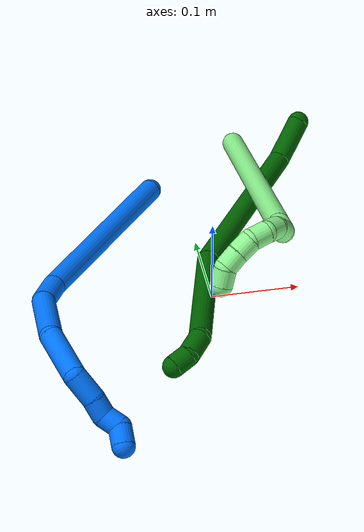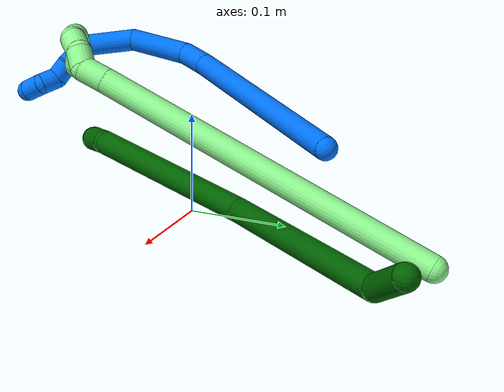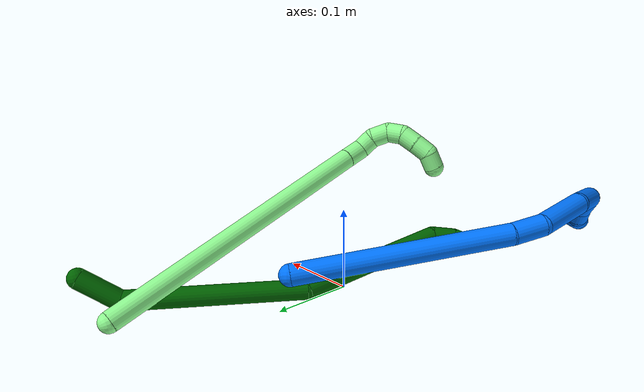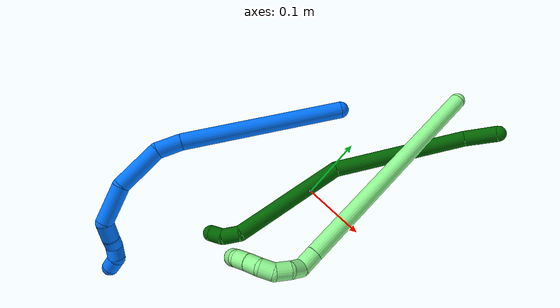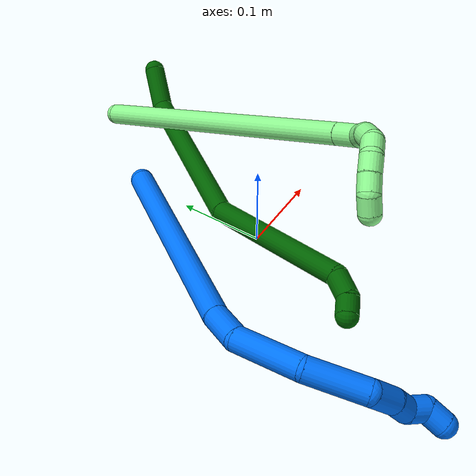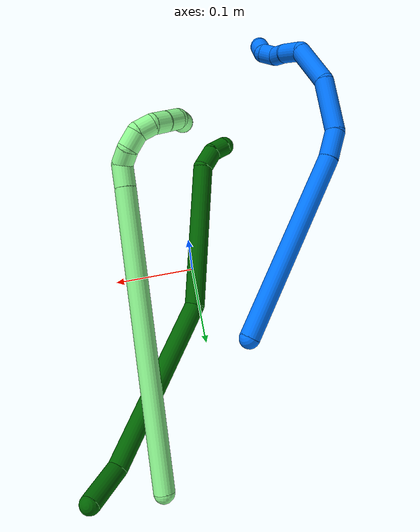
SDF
<sdf version="1.7">
 <world name="default">
  <model name="6">
   <static>0</static>
   <link name="6">
    <collision name="collision-cylinder-e_1_1_4">
     <pose>-0.000303 -0.018211 0.019753 0.744797 -0.01126 -0.004399</pose>
     <geometry><cylinder><radius>0.0125</radius><length>0.053736</length></cylinder></geometry>
     <surface>
      <friction><ode><mu>1.16</mu><mu2>1.16</mu2><slip1>0</slip1><slip2>0</slip2></ode></friction>
      <contact><ode><kp>1e+06</kp><kd>1</kd><max_vel>0</max_vel><min_depth>0.001</min_depth></ode></contact>
     </surface>
    </collision>
    <visual name="visual-cylinder-e_1_1_4">
     <pose>-0.000303 -0.018211 0.019753 0.744797 -0.01126 -0.004399</pose>
     <geometry><cylinder><radius>0.0125</radius><length>0.053736</length></cylinder></geometry>
     <material><ambient>0 0.392157 0.003922 1</ambient></material>
    </visual>
    <collision name="collision-cylinder-e_2_4_5">
     <pose>-0.009598 -0.139606 0.067545 1.30547 -0.083906 -0.064164</pose>
     <geometry><cylinder><radius>0.0125</radius><length>0.214608</length></cylinder></geometry>
     <surface>
      <friction><ode><mu>1.16</mu><mu2>1.16</mu2><slip1>0</slip1><slip2>0</slip2></ode></friction>
      <contact><ode><kp>1e+06</kp><kd>1</kd><max_vel>0</max_vel><min_depth>0.001</min_depth></ode></contact>
     </surface>
    </collision>
    <visual name="visual-cylinder-e_2_4_5">
     <pose>-0.009598 -0.139606 0.067545 1.30547 -0.083906 -0.064164</pose>
     <geometry><cylinder><radius>0.0125</radius><length>0.214608</length></cylinder></geometry>
     <material><ambient>0 0.392157 0.003922 1</ambient></material>
    </visual>
    <collision name="collision-cylinder-e_3_5_6">
     <pose>-0.0556 -0.326235 0.097615 1.54646 -0.41734 -0.407585</pose>
     <geometry><cylinder><radius>0.0125</radius><length>0.182613</length></cylinder></geometry>
     <surface>
      <friction><ode><mu>1.16</mu><mu2>1.16</mu2><slip1>0</slip1><slip2>0</slip2></ode></friction>
      <contact><ode><kp>1e+06</kp><kd>1</kd><max_vel>0</max_vel><min_depth>0.001</min_depth></ode></contact>
     </surface>
    </collision>
    <visual name="visual-cylinder-e_3_5_6">
     <pose>-0.0556 -0.326235 0.097615 1.54646 -0.41734 -0.407585</pose>
     <geometry><cylinder><radius>0.0125</radius><length>0.182613</length></cylinder></geometry>
     <material><ambient>0 0.392157 0.003922 1</ambient></material>
    </visual>
    <collision name="collision-cylinder-e_4_6_7">
     <pose>-0.093432 -0.422694 0.105197 1.1676 -0.058031 -0.038342</pose>
     <geometry><cylinder><radius>0.0125</radius><length>0.028344</length></cylinder></geometry>
     <surface>
      <friction><ode><mu>1.16</mu><mu2>1.16</mu2><slip1>0</slip1><slip2>0</slip2></ode></friction>
      <contact><ode><kp>1e+06</kp><kd>1</kd><max_vel>0</max_vel><min_depth>0.001</min_depth></ode></contact>
     </surface>
    </collision>
    <visual name="visual-cylinder-e_4_6_7">
     <pose>-0.093432 -0.422694 0.105197 1.1676 -0.058031 -0.038342</pose>
     <geometry><cylinder><radius>0.0125</radius><length>0.028344</length></cylinder></geometry>
     <material><ambient>0 0.392157 0.003922 1</ambient></material>
    </visual>
    <collision name="collision-cylinder-e_5_7_2">
     <pose>-0.090524 -0.443635 0.116258 0.963398 0.368665 0.194327</pose>
     <geometry><cylinder><radius>0.0125</radius><length>0.020698</length></cylinder></geometry>
     <surface>
      <friction><ode><mu>1.16</mu><mu2>1.16</mu2><slip1>0</slip1><slip2>0</slip2></ode></friction>
      <contact><ode><kp>1e+06</kp><kd>1</kd><max_vel>0</max_vel><min_depth>0.001</min_depth></ode></contact>
     </surface>
    </collision>
    <visual name="visual-cylinder-e_5_7_2">
     <pose>-0.090524 -0.443635 0.116258 0.963398 0.368665 0.194327</pose>
     <geometry><cylinder><radius>0.0125</radius><length>0.020698</length></cylinder></geometry>
     <material><ambient>0 0.392157 0.003922 1</ambient></material>
    </visual>
    <collision name="collision-sphere-2">
     <pose>-0.086794 -0.451563 0.121768 0 -0 0</pose>
     <geometry><sphere><radius>0.0125</radius></sphere></geometry>
     <surface>
      <friction><ode><mu>1.16</mu><mu2>1.16</mu2><slip1>0</slip1><slip2>0</slip2></ode></friction>
      <contact><ode><kp>1e+06</kp><kd>1</kd><max_vel>0</max_vel><min_depth>0.001</min_depth></ode></contact>
     </surface>
    </collision>
    <visual name="visual-sphere-2">
     <pose>-0.086794 -0.451563 0.121768 0 -0 0</pose>
     <geometry><sphere><radius>0.0125</radius></sphere></geometry>
     <material><ambient>0 0.392157 0.003922 1</ambient></material>
    </visual>
    <collision name="collision-sphere-7">
     <pose>-0.094254 -0.435708 0.110748 0 -0 0</pose>
     <geometry><sphere><radius>0.0125</radius></sphere></geometry>
     <surface>
      <friction><ode><mu>1.16</mu><mu2>1.16</mu2><slip1>0</slip1><slip2>0</slip2></ode></friction>
      <contact><ode><kp>1e+06</kp><kd>1</kd><max_vel>0</max_vel><min_depth>0.001</min_depth></ode></contact>
     </surface>
    </collision>
    <visual name="visual-sphere-7">
     <pose>-0.094254 -0.435708 0.110748 0 -0 0</pose>
     <geometry><sphere><radius>0.0125</radius></sphere></geometry>
     <material><ambient>0 0.392157 0.003922 1</ambient></material>
    </visual>
    <collision name="collision-sphere-6">
     <pose>-0.09261 -0.409681 0.099646 0 -0 0</pose>
     <geometry><sphere><radius>0.0125</radius></sphere></geometry>
     <surface>
      <friction><ode><mu>1.16</mu><mu2>1.16</mu2><slip1>0</slip1><slip2>0</slip2></ode></friction>
      <contact><ode><kp>1e+06</kp><kd>1</kd><max_vel>0</max_vel><min_depth>0.001</min_depth></ode></contact>
     </surface>
    </collision>
    <visual name="visual-sphere-6">
     <pose>-0.09261 -0.409681 0.099646 0 -0 0</pose>
     <geometry><sphere><radius>0.0125</radius></sphere></geometry>
     <material><ambient>0 0.392157 0.003922 1</ambient></material>
    </visual>
    <collision name="collision-sphere-5">
     <pose>-0.018591 -0.24279 0.095584 0 -0 0</pose>
     <geometry><sphere><radius>0.0125</radius></sphere></geometry>
     <surface>
      <friction><ode><mu>1.16</mu><mu2>1.16</mu2><slip1>0</slip1><slip2>0</slip2></ode></friction>
      <contact><ode><kp>1e+06</kp><kd>1</kd><max_vel>0</max_vel><min_depth>0.001</min_depth></ode></contact>
     </surface>
    </collision>
    <visual name="visual-sphere-5">
     <pose>-0.018591 -0.24279 0.095584 0 -0 0</pose>
     <geometry><sphere><radius>0.0125</radius></sphere></geometry>
     <material><ambient>0 0.392157 0.003922 1</ambient></material>
    </visual>
    <collision name="collision-sphere-1">
     <geometry><sphere><radius>0.0125</radius></sphere></geometry>
     <surface>
      <friction><ode><mu>1.16</mu><mu2>1.16</mu2><slip1>0</slip1><slip2>0</slip2></ode></friction>
      <contact><ode><kp>1e+06</kp><kd>1</kd><max_vel>0</max_vel><min_depth>0.001</min_depth></ode></contact>
     </surface>
    </collision>
    <visual name="visual-sphere-1">
     <geometry><sphere><radius>0.0125</radius></sphere></geometry>
     <material><ambient>0 0.392157 0.003922 1</ambient></material>
    </visual>
    <collision name="collision-sphere-4">
     <pose>-0.000605 -0.036421 0.039505 0 -0 0</pose>
     <geometry><sphere><radius>0.0125</radius></sphere></geometry>
     <surface>
      <friction><ode><mu>1.16</mu><mu2>1.16</mu2><slip1>0</slip1><slip2>0</slip2></ode></friction>
      <contact><ode><kp>1e+06</kp><kd>1</kd><max_vel>0</max_vel><min_depth>0.001</min_depth></ode></contact>
     </surface>
    </collision>
    <visual name="visual-sphere-4">
     <pose>-0.000605 -0.036421 0.039505 0 -0 0</pose>
     <geometry><sphere><radius>0.0125</radius></sphere></geometry>
     <material><ambient>0 0.392157 0.003922 1</ambient></material>
    </visual>
    <inertial>
     <pose>-0.033503 -0.223355 0.077542 0 -0 0</pose>
     <mass>0.5</mass>
     <inertia>
      <ixx>0.001032</ixx>
      <ixy>0</ixy>
      <ixz>0</ixz>
      <iyy>5.5e-05</iyy>
      <iyz>0</iyz>
      <izz>0.001572</izz>
     </inertia>
    </inertial>
   </link>
   <pose>0.158172 0.263869 0.039684 -2.86896 -0.086819 2.45376</pose>
  </model>
  <model name="13">
   <static>0</static>
   <link name="13">
    <collision name="collision-cylinder-e_1_1_4">
     <pose>0.039266 -0.002004 -0.171163 3.12989 0.225488 3.03829</pose>
     <geometry><cylinder><radius>0.0125</radius><length>0.35124</length></cylinder></geometry>
     <surface>
      <friction><ode><mu>1.16</mu><mu2>1.16</mu2><slip1>0</slip1><slip2>0</slip2></ode></friction>
      <contact><ode><kp>1e+06</kp><kd>1</kd><max_vel>0</max_vel><min_depth>0.001</min_depth></ode></contact>
     </surface>
    </collision>
    <visual name="visual-cylinder-e_1_1_4">
     <pose>0.039266 -0.002004 -0.171163 3.12989 0.225488 3.03829</pose>
     <geometry><cylinder><radius>0.0125</radius><length>0.35124</length></cylinder></geometry>
     <material><ambient>0.564706 0.984314 0.572549 1</ambient></material>
    </visual>
    <collision name="collision-cylinder-e_2_4_5">
     <pose>0.081499 -0.00385 -0.355321 -3.12945 0.224536 -3.034</pose>
     <geometry><cylinder><radius>0.0125</radius><length>0.026663</length></cylinder></geometry>
     <surface>
      <friction><ode><mu>1.16</mu><mu2>1.16</mu2><slip1>0</slip1><slip2>0</slip2></ode></friction>
      <contact><ode><kp>1e+06</kp><kd>1</kd><max_vel>0</max_vel><min_depth>0.001</min_depth></ode></contact>
     </surface>
    </collision>
    <visual name="visual-cylinder-e_2_4_5">
     <pose>0.081499 -0.00385 -0.355321 -3.12945 0.224536 -3.034</pose>
     <geometry><cylinder><radius>0.0125</radius><length>0.026663</length></cylinder></geometry>
     <material><ambient>0.564706 0.984314 0.572549 1</ambient></material>
    </visual>
    <collision name="collision-cylinder-e_3_5_6">
     <pose>0.084971 -0.010293 -0.376054 2.43528 0.049459 0.134003</pose>
     <geometry><cylinder><radius>0.0125</radius><length>0.020366</length></cylinder></geometry>
     <surface>
      <friction><ode><mu>1.16</mu><mu2>1.16</mu2><slip1>0</slip1><slip2>0</slip2></ode></friction>
      <contact><ode><kp>1e+06</kp><kd>1</kd><max_vel>0</max_vel><min_depth>0.001</min_depth></ode></contact>
     </surface>
    </collision>
    <visual name="visual-cylinder-e_3_5_6">
     <pose>0.084971 -0.010293 -0.376054 2.43528 0.049459 0.134003</pose>
     <geometry><cylinder><radius>0.0125</radius><length>0.020366</length></cylinder></geometry>
     <material><ambient>0.564706 0.984314 0.572549 1</ambient></material>
    </visual>
    <collision name="collision-cylinder-e_4_6_7">
     <pose>0.08242 -0.021321 -0.393217 2.70251 -0.285314 -1.14386</pose>
     <geometry><cylinder><radius>0.0125</radius><length>0.021705</length></cylinder></geometry>
     <surface>
      <friction><ode><mu>1.16</mu><mu2>1.16</mu2><slip1>0</slip1><slip2>0</slip2></ode></friction>
      <contact><ode><kp>1e+06</kp><kd>1</kd><max_vel>0</max_vel><min_depth>0.001</min_depth></ode></contact>
     </surface>
    </collision>
    <visual name="visual-cylinder-e_4_6_7">
     <pose>0.08242 -0.021321 -0.393217 2.70251 -0.285314 -1.14386</pose>
     <geometry><cylinder><radius>0.0125</radius><length>0.021705</length></cylinder></geometry>
     <material><ambient>0.564706 0.984314 0.572549 1</ambient></material>
    </visual>
    <collision name="collision-cylinder-e_5_7_8">
     <pose>0.071819 -0.028819 -0.408463 2.65597 -0.853645 -2.14414</pose>
     <geometry><cylinder><radius>0.0125</radius><length>0.020026</length></cylinder></geometry>
     <surface>
      <friction><ode><mu>1.16</mu><mu2>1.16</mu2><slip1>0</slip1><slip2>0</slip2></ode></friction>
      <contact><ode><kp>1e+06</kp><kd>1</kd><max_vel>0</max_vel><min_depth>0.001</min_depth></ode></contact>
     </surface>
    </collision>
    <visual name="visual-cylinder-e_5_7_8">
     <pose>0.071819 -0.028819 -0.408463 2.65597 -0.853645 -2.14414</pose>
     <geometry><cylinder><radius>0.0125</radius><length>0.020026</length></cylinder></geometry>
     <material><ambient>0.564706 0.984314 0.572549 1</ambient></material>
    </visual>
    <collision name="collision-cylinder-e_6_8_9">
     <pose>0.055166 -0.031102 -0.41834 -2.94959 -1.14475 2.84488</pose>
     <geometry><cylinder><radius>0.0125</radius><length>0.02</length></cylinder></geometry>
     <surface>
      <friction><ode><mu>1.16</mu><mu2>1.16</mu2><slip1>0</slip1><slip2>0</slip2></ode></friction>
      <contact><ode><kp>1e+06</kp><kd>1</kd><max_vel>0</max_vel><min_depth>0.001</min_depth></ode></contact>
     </surface>
    </collision>
    <visual name="visual-cylinder-e_6_8_9">
     <pose>0.055166 -0.031102 -0.41834 -2.94959 -1.14475 2.84488</pose>
     <geometry><cylinder><radius>0.0125</radius><length>0.02</length></cylinder></geometry>
     <material><ambient>0.564706 0.984314 0.572549 1</ambient></material>
    </visual>
    <collision name="collision-cylinder-e_7_9_10">
     <pose>0.037108 -0.028697 -0.42655 -2.77049 -1.10887 2.55293</pose>
     <geometry><cylinder><radius>0.0125</radius><length>0.02</length></cylinder></geometry>
     <surface>
      <friction><ode><mu>1.16</mu><mu2>1.16</mu2><slip1>0</slip1><slip2>0</slip2></ode></friction>
      <contact><ode><kp>1e+06</kp><kd>1</kd><max_vel>0</max_vel><min_depth>0.001</min_depth></ode></contact>
     </surface>
    </collision>
    <visual name="visual-cylinder-e_7_9_10">
     <pose>0.037108 -0.028697 -0.42655 -2.77049 -1.10887 2.55293</pose>
     <geometry><cylinder><radius>0.0125</radius><length>0.02</length></cylinder></geometry>
     <material><ambient>0.564706 0.984314 0.572549 1</ambient></material>
    </visual>
    <collision name="collision-cylinder-e_8_10_2">
     <pose>0.020656 -0.020634 -0.43218 -1.79587 -0.848054 1.03076</pose>
     <geometry><cylinder><radius>0.0125</radius><length>0.02</length></cylinder></geometry>
     <surface>
      <friction><ode><mu>1.16</mu><mu2>1.16</mu2><slip1>0</slip1><slip2>0</slip2></ode></friction>
      <contact><ode><kp>1e+06</kp><kd>1</kd><max_vel>0</max_vel><min_depth>0.001</min_depth></ode></contact>
     </surface>
    </collision>
    <visual name="visual-cylinder-e_8_10_2">
     <pose>0.020656 -0.020634 -0.43218 -1.79587 -0.848054 1.03076</pose>
     <geometry><cylinder><radius>0.0125</radius><length>0.02</length></cylinder></geometry>
     <material><ambient>0.564706 0.984314 0.572549 1</ambient></material>
    </visual>
    <collision name="collision-sphere-2">
     <pose>0.013156 -0.014186 -0.433656 0 -0 0</pose>
     <geometry><sphere><radius>0.0125</radius></sphere></geometry>
     <surface>
      <friction><ode><mu>1.16</mu><mu2>1.16</mu2><slip1>0</slip1><slip2>0</slip2></ode></friction>
      <contact><ode><kp>1e+06</kp><kd>1</kd><max_vel>0</max_vel><min_depth>0.001</min_depth></ode></contact>
     </surface>
    </collision>
    <visual name="visual-sphere-2">
     <pose>0.013156 -0.014186 -0.433656 0 -0 0</pose>
     <geometry><sphere><radius>0.0125</radius></sphere></geometry>
     <material><ambient>0.564706 0.984314 0.572549 1</ambient></material>
    </visual>
    <collision name="collision-sphere-10">
     <pose>0.028156 -0.027081 -0.430704 0 -0 0</pose>
     <geometry><sphere><radius>0.0125</radius></sphere></geometry>
     <surface>
      <friction><ode><mu>1.16</mu><mu2>1.16</mu2><slip1>0</slip1><slip2>0</slip2></ode></friction>
      <contact><ode><kp>1e+06</kp><kd>1</kd><max_vel>0</max_vel><min_depth>0.001</min_depth></ode></contact>
     </surface>
    </collision>
    <visual name="visual-sphere-10">
     <pose>0.028156 -0.027081 -0.430704 0 -0 0</pose>
     <geometry><sphere><radius>0.0125</radius></sphere></geometry>
     <material><ambient>0.564706 0.984314 0.572549 1</ambient></material>
    </visual>
    <collision name="collision-sphere-9">
     <pose>0.04606 -0.030314 -0.422397 0 -0 0</pose>
     <geometry><sphere><radius>0.0125</radius></sphere></geometry>
     <surface>
      <friction><ode><mu>1.16</mu><mu2>1.16</mu2><slip1>0</slip1><slip2>0</slip2></ode></friction>
      <contact><ode><kp>1e+06</kp><kd>1</kd><max_vel>0</max_vel><min_depth>0.001</min_depth></ode></contact>
     </surface>
    </collision>
    <visual name="visual-sphere-9">
     <pose>0.04606 -0.030314 -0.422397 0 -0 0</pose>
     <geometry><sphere><radius>0.0125</radius></sphere></geometry>
     <material><ambient>0.564706 0.984314 0.572549 1</ambient></material>
    </visual>
    <collision name="collision-sphere-4">
     <pose>0.078531 -0.004008 -0.342325 0 -0 0</pose>
     <geometry><sphere><radius>0.0125</radius></sphere></geometry>
     <surface>
      <friction><ode><mu>1.16</mu><mu2>1.16</mu2><slip1>0</slip1><slip2>0</slip2></ode></friction>
      <contact><ode><kp>1e+06</kp><kd>1</kd><max_vel>0</max_vel><min_depth>0.001</min_depth></ode></contact>
     </surface>
    </collision>
    <visual name="visual-sphere-4">
     <pose>0.078531 -0.004008 -0.342325 0 -0 0</pose>
     <geometry><sphere><radius>0.0125</radius></sphere></geometry>
     <material><ambient>0.564706 0.984314 0.572549 1</ambient></material>
    </visual>
    <collision name="collision-sphere-1">
     <geometry><sphere><radius>0.0125</radius></sphere></geometry>
     <surface>
      <friction><ode><mu>1.16</mu><mu2>1.16</mu2><slip1>0</slip1><slip2>0</slip2></ode></friction>
      <contact><ode><kp>1e+06</kp><kd>1</kd><max_vel>0</max_vel><min_depth>0.001</min_depth></ode></contact>
     </surface>
    </collision>
    <visual name="visual-sphere-1">
     <geometry><sphere><radius>0.0125</radius></sphere></geometry>
     <material><ambient>0.564706 0.984314 0.572549 1</ambient></material>
    </visual>
    <collision name="collision-sphere-8">
     <pose>0.064273 -0.031891 -0.414283 0 -0 0</pose>
     <geometry><sphere><radius>0.0125</radius></sphere></geometry>
     <surface>
      <friction><ode><mu>1.16</mu><mu2>1.16</mu2><slip1>0</slip1><slip2>0</slip2></ode></friction>
      <contact><ode><kp>1e+06</kp><kd>1</kd><max_vel>0</max_vel><min_depth>0.001</min_depth></ode></contact>
     </surface>
    </collision>
    <visual name="visual-sphere-8">
     <pose>0.064273 -0.031891 -0.414283 0 -0 0</pose>
     <geometry><sphere><radius>0.0125</radius></sphere></geometry>
     <material><ambient>0.564706 0.984314 0.572549 1</ambient></material>
    </visual>
    <collision name="collision-sphere-5">
     <pose>0.084468 -0.003692 -0.368317 0 -0 0</pose>
     <geometry><sphere><radius>0.0125</radius></sphere></geometry>
     <surface>
      <friction><ode><mu>1.16</mu><mu2>1.16</mu2><slip1>0</slip1><slip2>0</slip2></ode></friction>
      <contact><ode><kp>1e+06</kp><kd>1</kd><max_vel>0</max_vel><min_depth>0.001</min_depth></ode></contact>
     </surface>
    </collision>
    <visual name="visual-sphere-5">
     <pose>0.084468 -0.003692 -0.368317 0 -0 0</pose>
     <geometry><sphere><radius>0.0125</radius></sphere></geometry>
     <material><ambient>0.564706 0.984314 0.572549 1</ambient></material>
    </visual>
    <collision name="collision-sphere-6">
     <pose>0.085475 -0.016894 -0.383791 0 -0 0</pose>
     <geometry><sphere><radius>0.0125</radius></sphere></geometry>
     <surface>
      <friction><ode><mu>1.16</mu><mu2>1.16</mu2><slip1>0</slip1><slip2>0</slip2></ode></friction>
      <contact><ode><kp>1e+06</kp><kd>1</kd><max_vel>0</max_vel><min_depth>0.001</min_depth></ode></contact>
     </surface>
    </collision>
    <visual name="visual-sphere-6">
     <pose>0.085475 -0.016894 -0.383791 0 -0 0</pose>
     <geometry><sphere><radius>0.0125</radius></sphere></geometry>
     <material><ambient>0.564706 0.984314 0.572549 1</ambient></material>
    </visual>
    <collision name="collision-sphere-7">
     <pose>0.079366 -0.025748 -0.402643 0 -0 0</pose>
     <geometry><sphere><radius>0.0125</radius></sphere></geometry>
     <surface>
      <friction><ode><mu>1.16</mu><mu2>1.16</mu2><slip1>0</slip1><slip2>0</slip2></ode></friction>
      <contact><ode><kp>1e+06</kp><kd>1</kd><max_vel>0</max_vel><min_depth>0.001</min_depth></ode></contact>
     </surface>
    </collision>
    <visual name="visual-sphere-7">
     <pose>0.079366 -0.025748 -0.402643 0 -0 0</pose>
     <geometry><sphere><radius>0.0125</radius></sphere></geometry>
     <material><ambient>0.564706 0.984314 0.572549 1</ambient></material>
    </visual>
    <inertial>
     <pose>0.046362 -0.007329 -0.239016 0 -0 0</pose>
     <mass>0.5</mass>
     <inertia>
      <ixx>-0.003151</ixx>
      <ixy>0</ixy>
      <ixz>0</ixz>
      <iyy>0.003974</iyy>
      <iyz>0</iyz>
      <izz>-0.000798</izz>
     </inertia>
    </inertial>
   </link>
   <pose>0.078188 0.266725 0.016302 -1.84851 -0.633766 -0.070743</pose>
  </model>
  <model name="14">
   <static>0</static>
   <link name="14">
    <collision name="collision-cylinder-e_1_1_4">
     <pose>-0.077059 -0.086463 0.03424 1.19374 -0.691957 -0.480466</pose>
     <geometry><cylinder><radius>0.0125</radius><length>0.241547</length></cylinder></geometry>
     <surface>
      <friction><ode><mu>1.16</mu><mu2>1.16</mu2><slip1>0</slip1><slip2>0</slip2></ode></friction>
      <contact><ode><kp>1e+06</kp><kd>1</kd><max_vel>0</max_vel><min_depth>0.001</min_depth></ode></contact>
     </surface>
    </collision>
    <visual name="visual-cylinder-e_1_1_4">
     <pose>-0.077059 -0.086463 0.03424 1.19374 -0.691957 -0.480466</pose>
     <geometry><cylinder><radius>0.0125</radius><length>0.241547</length></cylinder></geometry>
     <material><ambient>0 0.462745 1 1</ambient></material>
    </visual>
    <collision name="collision-cylinder-e_2_4_5">
     <pose>-0.163845 -0.186433 0.075954 1.06537 -0.562251 -0.337247</pose>
     <geometry><cylinder><radius>0.0125</radius><length>0.036494</length></cylinder></geometry>
     <surface>
      <friction><ode><mu>1.16</mu><mu2>1.16</mu2><slip1>0</slip1><slip2>0</slip2></ode></friction>
      <contact><ode><kp>1e+06</kp><kd>1</kd><max_vel>0</max_vel><min_depth>0.001</min_depth></ode></contact>
     </surface>
    </collision>
    <visual name="visual-cylinder-e_2_4_5">
     <pose>-0.163845 -0.186433 0.075954 1.06537 -0.562251 -0.337247</pose>
     <geometry><cylinder><radius>0.0125</radius><length>0.036494</length></cylinder></geometry>
     <material><ambient>0 0.462745 1 1</ambient></material>
    </visual>
    <collision name="collision-cylinder-e_3_5_6">
     <pose>-0.178745 -0.227657 0.103799 0.936977 -0.149258 -0.075639</pose>
     <geometry><cylinder><radius>0.0125</radius><length>0.069567</length></cylinder></geometry>
     <surface>
      <friction><ode><mu>1.16</mu><mu2>1.16</mu2><slip1>0</slip1><slip2>0</slip2></ode></friction>
      <contact><ode><kp>1e+06</kp><kd>1</kd><max_vel>0</max_vel><min_depth>0.001</min_depth></ode></contact>
     </surface>
    </collision>
    <visual name="visual-cylinder-e_3_5_6">
     <pose>-0.178745 -0.227657 0.103799 0.936977 -0.149258 -0.075639</pose>
     <geometry><cylinder><radius>0.0125</radius><length>0.069567</length></cylinder></geometry>
     <material><ambient>0 0.462745 1 1</ambient></material>
    </visual>
    <collision name="collision-cylinder-e_4_6_7">
     <pose>-0.176923 -0.280754 0.137687 1.08144 0.238594 0.14369</pose>
     <geometry><cylinder><radius>0.0125</radius><length>0.05919</length></cylinder></geometry>
     <surface>
      <friction><ode><mu>1.16</mu><mu2>1.16</mu2><slip1>0</slip1><slip2>0</slip2></ode></friction>
      <contact><ode><kp>1e+06</kp><kd>1</kd><max_vel>0</max_vel><min_depth>0.001</min_depth></ode></contact>
     </surface>
    </collision>
    <visual name="visual-cylinder-e_4_6_7">
     <pose>-0.176923 -0.280754 0.137687 1.08144 0.238594 0.14369</pose>
     <geometry><cylinder><radius>0.0125</radius><length>0.05919</length></cylinder></geometry>
     <material><ambient>0 0.462745 1 1</ambient></material>
    </visual>
    <collision name="collision-cylinder-e_5_7_8">
     <pose>-0.158757 -0.316672 0.150456 1.64169 0.813418 0.866232</pose>
     <geometry><cylinder><radius>0.0125</radius><length>0.030749</length></cylinder></geometry>
     <surface>
      <friction><ode><mu>1.16</mu><mu2>1.16</mu2><slip1>0</slip1><slip2>0</slip2></ode></friction>
      <contact><ode><kp>1e+06</kp><kd>1</kd><max_vel>0</max_vel><min_depth>0.001</min_depth></ode></contact>
     </surface>
    </collision>
    <visual name="visual-cylinder-e_5_7_8">
     <pose>-0.158757 -0.316672 0.150456 1.64169 0.813418 0.866232</pose>
     <geometry><cylinder><radius>0.0125</radius><length>0.030749</length></cylinder></geometry>
     <material><ambient>0 0.462745 1 1</ambient></material>
    </visual>
    <collision name="collision-cylinder-e_6_8_9">
     <pose>-0.140639 -0.334705 0.147525 1.85416 0.726993 0.93842</pose>
     <geometry><cylinder><radius>0.0125</radius><length>0.020901</length></cylinder></geometry>
     <surface>
      <friction><ode><mu>1.16</mu><mu2>1.16</mu2><slip1>0</slip1><slip2>0</slip2></ode></friction>
      <contact><ode><kp>1e+06</kp><kd>1</kd><max_vel>0</max_vel><min_depth>0.001</min_depth></ode></contact>
     </surface>
    </collision>
    <visual name="visual-cylinder-e_6_8_9">
     <pose>-0.140639 -0.334705 0.147525 1.85416 0.726993 0.93842</pose>
     <geometry><cylinder><radius>0.0125</radius><length>0.020901</length></cylinder></geometry>
     <material><ambient>0 0.462745 1 1</ambient></material>
    </visual>
    <collision name="collision-cylinder-e_7_9_10">
     <pose>-0.12636 -0.34809 0.149027 1.01154 0.812554 0.467798</pose>
     <geometry><cylinder><radius>0.0125</radius><length>0.020202</length></cylinder></geometry>
     <surface>
      <friction><ode><mu>1.16</mu><mu2>1.16</mu2><slip1>0</slip1><slip2>0</slip2></ode></friction>
      <contact><ode><kp>1e+06</kp><kd>1</kd><max_vel>0</max_vel><min_depth>0.001</min_depth></ode></contact>
     </surface>
    </collision>
    <visual name="visual-cylinder-e_7_9_10">
     <pose>-0.12636 -0.34809 0.149027 1.01154 0.812554 0.467798</pose>
     <geometry><cylinder><radius>0.0125</radius><length>0.020202</length></cylinder></geometry>
     <material><ambient>0 0.462745 1 1</ambient></material>
    </visual>
    <collision name="collision-cylinder-e_8_10_2">
     <pose>-0.117531 -0.364506 0.153641 1.48272 0.140534 0.128706</pose>
     <geometry><cylinder><radius>0.0125</radius><length>0.02135</length></cylinder></geometry>
     <surface>
      <friction><ode><mu>1.16</mu><mu2>1.16</mu2><slip1>0</slip1><slip2>0</slip2></ode></friction>
      <contact><ode><kp>1e+06</kp><kd>1</kd><max_vel>0</max_vel><min_depth>0.001</min_depth></ode></contact>
     </surface>
    </collision>
    <visual name="visual-cylinder-e_8_10_2">
     <pose>-0.117531 -0.364506 0.153641 1.48272 0.140534 0.128706</pose>
     <geometry><cylinder><radius>0.0125</radius><length>0.02135</length></cylinder></geometry>
     <material><ambient>0 0.462745 1 1</ambient></material>
    </visual>
    <collision name="collision-sphere-2">
     <pose>-0.116036 -0.375035 0.154571 0 -0 0</pose>
     <geometry><sphere><radius>0.0125</radius></sphere></geometry>
     <surface>
      <friction><ode><mu>1.16</mu><mu2>1.16</mu2><slip1>0</slip1><slip2>0</slip2></ode></friction>
      <contact><ode><kp>1e+06</kp><kd>1</kd><max_vel>0</max_vel><min_depth>0.001</min_depth></ode></contact>
     </surface>
    </collision>
    <visual name="visual-sphere-2">
     <pose>-0.116036 -0.375035 0.154571 0 -0 0</pose>
     <geometry><sphere><radius>0.0125</radius></sphere></geometry>
     <material><ambient>0 0.462745 1 1</ambient></material>
    </visual>
    <collision name="collision-sphere-10">
     <pose>-0.119026 -0.353978 0.152712 0 -0 0</pose>
     <geometry><sphere><radius>0.0125</radius></sphere></geometry>
     <surface>
      <friction><ode><mu>1.16</mu><mu2>1.16</mu2><slip1>0</slip1><slip2>0</slip2></ode></friction>
      <contact><ode><kp>1e+06</kp><kd>1</kd><max_vel>0</max_vel><min_depth>0.001</min_depth></ode></contact>
     </surface>
    </collision>
    <visual name="visual-sphere-10">
     <pose>-0.119026 -0.353978 0.152712 0 -0 0</pose>
     <geometry><sphere><radius>0.0125</radius></sphere></geometry>
     <material><ambient>0 0.462745 1 1</ambient></material>
    </visual>
    <collision name="collision-sphere-9">
     <pose>-0.133694 -0.342202 0.145341 0 -0 0</pose>
     <geometry><sphere><radius>0.0125</radius></sphere></geometry>
     <surface>
      <friction><ode><mu>1.16</mu><mu2>1.16</mu2><slip1>0</slip1><slip2>0</slip2></ode></friction>
      <contact><ode><kp>1e+06</kp><kd>1</kd><max_vel>0</max_vel><min_depth>0.001</min_depth></ode></contact>
     </surface>
    </collision>
    <visual name="visual-sphere-9">
     <pose>-0.133694 -0.342202 0.145341 0 -0 0</pose>
     <geometry><sphere><radius>0.0125</radius></sphere></geometry>
     <material><ambient>0 0.462745 1 1</ambient></material>
    </visual>
    <collision name="collision-sphere-4">
     <pose>-0.154118 -0.172926 0.068479 0 -0 0</pose>
     <geometry><sphere><radius>0.0125</radius></sphere></geometry>
     <surface>
      <friction><ode><mu>1.16</mu><mu2>1.16</mu2><slip1>0</slip1><slip2>0</slip2></ode></friction>
      <contact><ode><kp>1e+06</kp><kd>1</kd><max_vel>0</max_vel><min_depth>0.001</min_depth></ode></contact>
     </surface>
    </collision>
    <visual name="visual-sphere-4">
     <pose>-0.154118 -0.172926 0.068479 0 -0 0</pose>
     <geometry><sphere><radius>0.0125</radius></sphere></geometry>
     <material><ambient>0 0.462745 1 1</ambient></material>
    </visual>
    <collision name="collision-sphere-1">
     <geometry><sphere><radius>0.0125</radius></sphere></geometry>
     <surface>
      <friction><ode><mu>1.16</mu><mu2>1.16</mu2><slip1>0</slip1><slip2>0</slip2></ode></friction>
      <contact><ode><kp>1e+06</kp><kd>1</kd><max_vel>0</max_vel><min_depth>0.001</min_depth></ode></contact>
     </surface>
    </collision>
    <visual name="visual-sphere-1">
     <geometry><sphere><radius>0.0125</radius></sphere></geometry>
     <material><ambient>0 0.462745 1 1</ambient></material>
    </visual>
    <collision name="collision-sphere-8">
     <pose>-0.147585 -0.327208 0.149708 0 -0 0</pose>
     <geometry><sphere><radius>0.0125</radius></sphere></geometry>
     <surface>
      <friction><ode><mu>1.16</mu><mu2>1.16</mu2><slip1>0</slip1><slip2>0</slip2></ode></friction>
      <contact><ode><kp>1e+06</kp><kd>1</kd><max_vel>0</max_vel><min_depth>0.001</min_depth></ode></contact>
     </surface>
    </collision>
    <visual name="visual-sphere-8">
     <pose>-0.147585 -0.327208 0.149708 0 -0 0</pose>
     <geometry><sphere><radius>0.0125</radius></sphere></geometry>
     <material><ambient>0 0.462745 1 1</ambient></material>
    </visual>
    <collision name="collision-sphere-5">
     <pose>-0.173573 -0.199941 0.083428 0 -0 0</pose>
     <geometry><sphere><radius>0.0125</radius></sphere></geometry>
     <surface>
      <friction><ode><mu>1.16</mu><mu2>1.16</mu2><slip1>0</slip1><slip2>0</slip2></ode></friction>
      <contact><ode><kp>1e+06</kp><kd>1</kd><max_vel>0</max_vel><min_depth>0.001</min_depth></ode></contact>
     </surface>
    </collision>
    <visual name="visual-sphere-5">
     <pose>-0.173573 -0.199941 0.083428 0 -0 0</pose>
     <geometry><sphere><radius>0.0125</radius></sphere></geometry>
     <material><ambient>0 0.462745 1 1</ambient></material>
    </visual>
    <collision name="collision-sphere-6">
     <pose>-0.183918 -0.255373 0.12417 0 -0 0</pose>
     <geometry><sphere><radius>0.0125</radius></sphere></geometry>
     <surface>
      <friction><ode><mu>1.16</mu><mu2>1.16</mu2><slip1>0</slip1><slip2>0</slip2></ode></friction>
      <contact><ode><kp>1e+06</kp><kd>1</kd><max_vel>0</max_vel><min_depth>0.001</min_depth></ode></contact>
     </surface>
    </collision>
    <visual name="visual-sphere-6">
     <pose>-0.183918 -0.255373 0.12417 0 -0 0</pose>
     <geometry><sphere><radius>0.0125</radius></sphere></geometry>
     <material><ambient>0 0.462745 1 1</ambient></material>
    </visual>
    <collision name="collision-sphere-7">
     <pose>-0.169929 -0.306136 0.151204 0 -0 0</pose>
     <geometry><sphere><radius>0.0125</radius></sphere></geometry>
     <surface>
      <friction><ode><mu>1.16</mu><mu2>1.16</mu2><slip1>0</slip1><slip2>0</slip2></ode></friction>
      <contact><ode><kp>1e+06</kp><kd>1</kd><max_vel>0</max_vel><min_depth>0.001</min_depth></ode></contact>
     </surface>
    </collision>
    <visual name="visual-sphere-7">
     <pose>-0.169929 -0.306136 0.151204 0 -0 0</pose>
     <geometry><sphere><radius>0.0125</radius></sphere></geometry>
     <material><ambient>0 0.462745 1 1</ambient></material>
    </visual>
    <inertial>
     <pose>-0.120765 -0.183382 0.080827 0 -0 0</pose>
     <mass>0.5</mass>
     <inertia>
      <ixx>0.000439</ixx>
      <ixy>0</ixy>
      <ixz>0</ixz>
      <iyy>0.000298</iyy>
      <iyz>0</iyz>
      <izz>0.001664</izz>
     </inertia>
    </inertial>
   </link>
   <pose>-0.049305 0.121454 0.068155 0.55045 0.421265 0.081846</pose>
  </model>
 </world>
</sdf>
